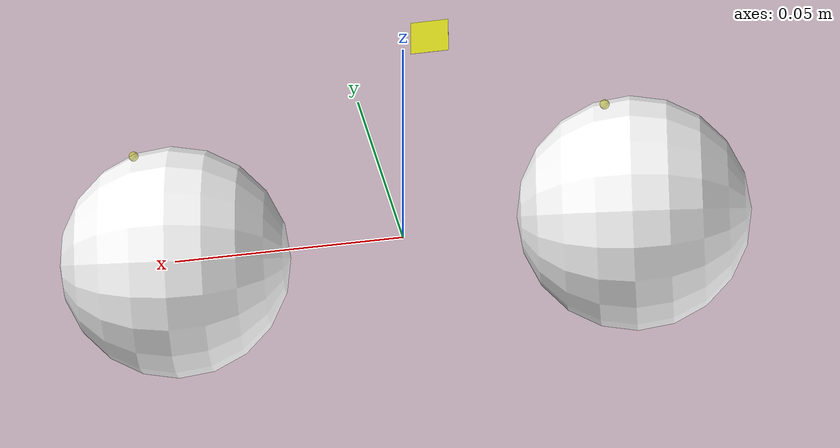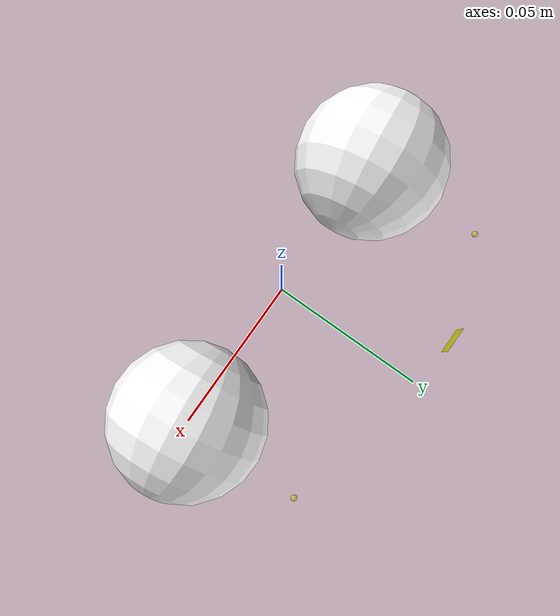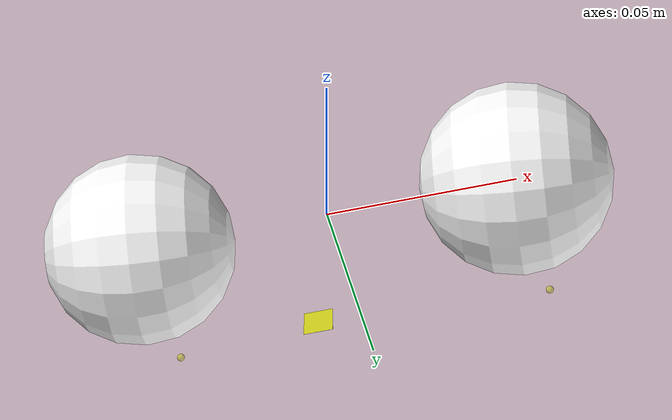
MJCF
<?xml version="1.0"?>
<mujoco>
    <compiler angle="radian"/>
    <option collision="all" gravity="0 0 0" timestep="0.002"/>
    <size njmax="1000" nconmax="400"/>
    <default class="main">
        <default class="eye">
            <position ctrllimited="true" kp="5"/>
            <joint type="hinge" stiffness="0.0" damping="0.5" armature="0.0" limited="true"/>
        </default>
        <default class="grid">
            <geom type="box" size="0.0025 0.0001 0.0025" rgba="0.5 0.5 0.5 0"/>
        </default>
    </default>
    <asset>
        <texture type="skybox" builtin="gradient" rgb1="1 1 1" rgb2="0.6 0.8 1" width="256" height="256"/>
        <texture type="cube" name="blue-eye" file="assets/blue_eye_texture_circle.png" gridsize="3 4" gridlayout=".U..LFRB.D.."/>
        <material name="blue-eye" texture="blue-eye" texuniform="true"/>
        <mesh name="eye" file="assets/basic_eye_2.stl" scale="0.05 0.05 0.05"/>
    </asset>
    <worldbody>
        <light name="scene_directional_light" directional="true" castshadow="false" cutoff="4" exponent="20"
               diffuse="1 1 1" specular="0 0 0" pos=".9 .3 2.5"/>

        <camera name="env" pos="-0.1 -0.05 0.05" euler="1.0 -0.85 -0.37"/>

        <body name="left_eye" pos="-0.05 0 0" quat="0.7071068 0.7071068 0 0">
            <geom name="left_eye" type="sphere" size="0.025" material="blue-eye" rgba="1 1 1 1" quat="0.6625191 0.0130711 0.7488417 0.0115643"/>
            <camera name="left_eye" fovy="90"/>
            <joint name="left-eye-joint-x" class="eye" axis="1 0 0" range="-1.0 1.0"/>
            <joint name="left-eye-joint-y" class="eye" axis="0 1 0" range="-1.0 1.0"/>
            <site name="rangefinder-site-1" quat="0 0 1 0"/>

            <geom name="fixate-point-1" pos="0 0 -0.04" type="sphere" size="0.001" rgba="0.8 0.8 0 0.5"/>

        </body>

        <body name="right_eye" pos="0.05 0 0" quat="0.7071068 0.7071068 0 0">
            <geom name="right_eye" type="sphere" size="0.025" material="blue-eye" rgba="1 1 1 1" quat="0.6625191 0.0130711 0.7488417 0.0115643"/>
            <camera name="right_eye" fovy="90"/>
            <joint name="right-eye-joint-x" class="eye" axis="1 0 0" range="-1.0 1.0"/>
            <joint name="right-eye-joint-y" class="eye" axis="0 1 0" range="-1.0 1.0"/>

            <geom name="fixate-point-2" pos="0 0 -0.04" type="sphere" size="0.001" rgba="0.8 0.8 0 0.5"/>

        </body>

        <body name="target" pos="-0.015 0.05 0.015">
            <geom name="target" type="box" size="0.004 0.00001 0.004" rgba="0.8 0.8 0.1 1"/>
        </body>

        <body name="smart-glass-pane" pos="0 0.05 0">
            <geom name="grid-0" pos="-0.015 0 0.015" class="grid"/>
            <geom name="grid-1" pos="-0.005 0 0.015" class="grid"/>
            <geom name="grid-2" pos="0.005 0 0.015" class="grid"/>
            <geom name="grid-3" pos="0.015 0 0.015" class="grid"/>

            <geom name="grid-4" pos="-0.015 0 0.005" class="grid"/>
            <geom name="grid-5" pos="-0.005 0 0.005" class="grid"/>
            <geom name="grid-6" pos="0.005 0 0.005" class="grid"/>
            <geom name="grid-7" pos="0.015 0 0.005" class="grid"/>

            <geom name="grid-8" pos="-0.015 0 -0.005" class="grid"/>
            <geom name="grid-9" pos="-0.005 0 -0.005" class="grid"/>
            <geom name="grid-10" pos="0.005 0 -0.005" class="grid"/>
            <geom name="grid-11" pos="0.015 0 -0.005" class="grid"/>

            <geom name="grid-12" pos="-0.015 0 -0.015" class="grid"/>
            <geom name="grid-13" pos="-0.005 0 -0.015" class="grid"/>
            <geom name="grid-14" pos="0.005 0 -0.015" class="grid"/>
            <geom name="grid-15" pos="0.015 0 -0.015" class="grid"/>
        </body>

    </worldbody>
    <actuator>
        <position name="left-eye-x-motor" joint="left-eye-joint-x" class="eye" ctrlrange="-1.0 1.0"/>
        <position name="left-eye-y-motor" joint="left-eye-joint-y" class="eye" ctrlrange="-1.0 1.0"/>

        <position name="right-eye-x-motor" joint="right-eye-joint-x" class="eye" ctrlrange="-1.0 1.0"/>
        <position name="right-eye-y-motor" joint="right-eye-joint-y" class="eye" ctrlrange="-1.0 1.0"/>
    </actuator>

    <sensor>
        <rangefinder name="rangefinder" site="rangefinder-site-1"/>
    </sensor>

</mujoco>
